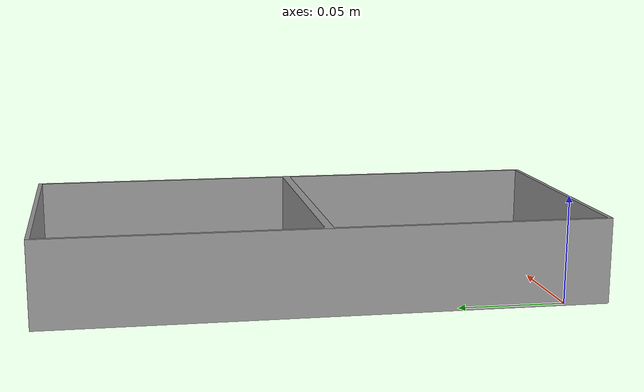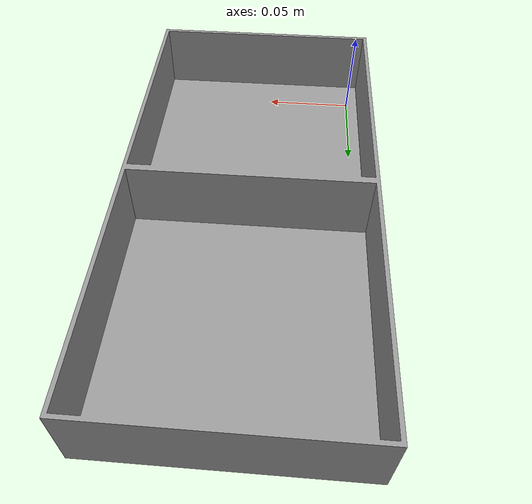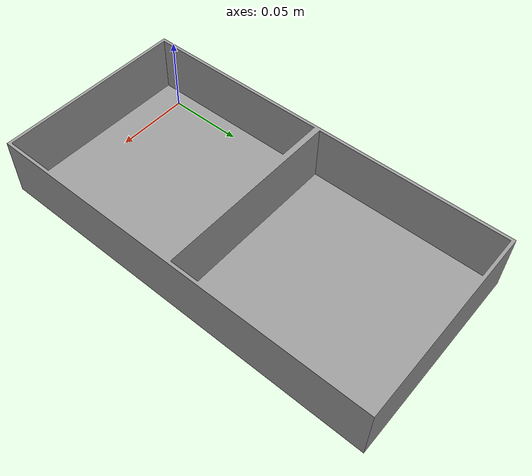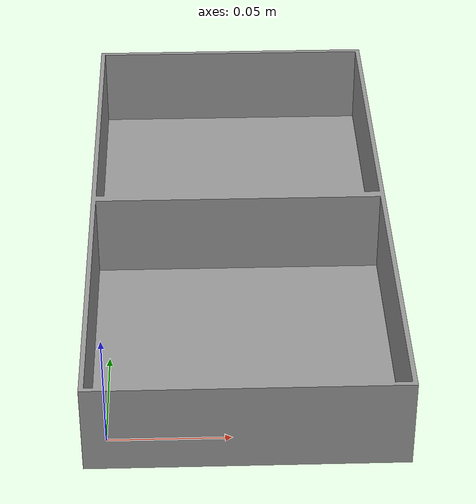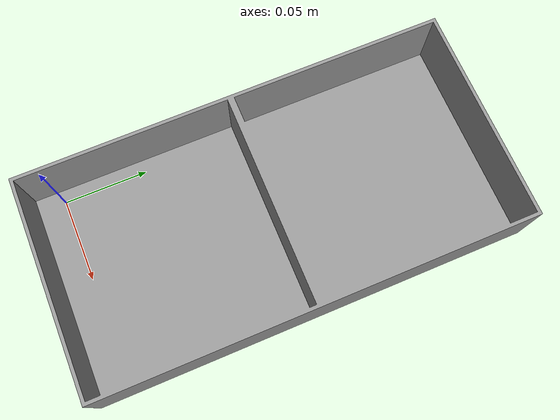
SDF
<?xml version='1.0'?>
<sdf version="1.5">
  <model name="tr_box">
    <pose>0 0 0 0 0 0</pose>
    <static>false</static>
    <link name="link">
      <inertial>
        <mass>1.0</mass>
        <inertia>
          <ixx>0.083</ixx>
          <ixy>0.0</ixy>
          <ixz>0.0</ixz>
          <iyy>0.083</iyy>
          <iyz>0.0</iyz>
          <izz>0.083</izz>
        </inertia>
      </inertial>
      <collision name="collision">
        <geometry>
          <mesh>
            <uri>model://tr_box/tr_box.stl</uri>
            <scale>0.0393701 0.0393701 0.0393701</scale>
          </mesh>
	</geometry>
        <surface>
          <friction>
            <ode>
              <mu>1.0</mu>
              <mu2>1.0</mu2>
            </ode>
          </friction>
          <contact>
            <ode>
              <kp>10000000.0</kp>
              <kd>1.0</kd>
              <min_depth>0.001</min_depth>
              <max_vel>0.1</max_vel>
            </ode>
          </contact>
        </surface>
      </collision>
      <visual name="visual">
        <material>
          <script>
            <uri>file://media/materials/scripts/gazebo.material</uri>
            <name>Gazebo/Grey</name>
          </script>
        </material>
        <geometry>
          <mesh>
            <uri>model://tr_box/tr_box.stl</uri>
            <scale>0.0393701 0.0393701 0.0393701</scale>
          </mesh>
        </geometry>
      </visual>
    </link>
  </model>
</sdf>
